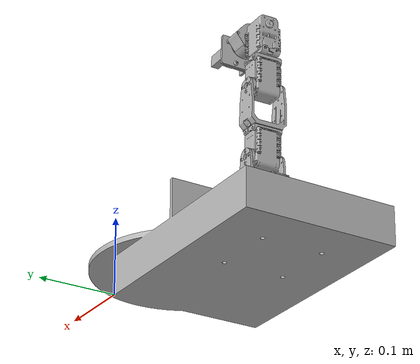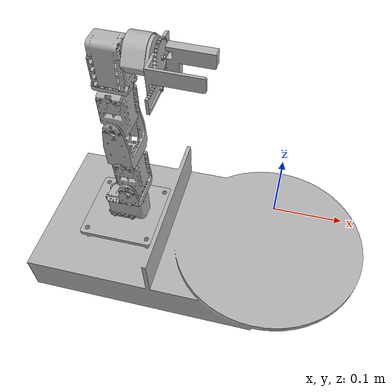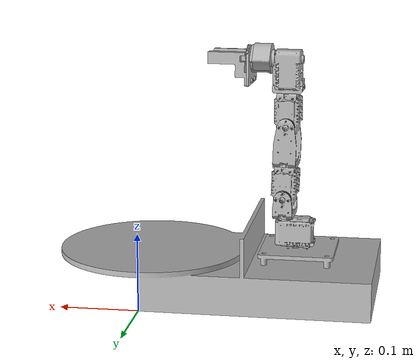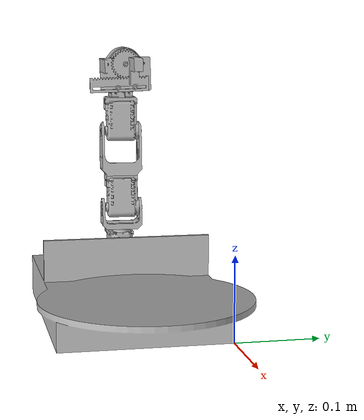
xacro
<?xml version="1.0" ?>
<robot name="gripper_v2_step_urdf_run" xmlns:xacro="http://www.ros.org/wiki/xacro">

<xacro:include filename="$(find gripper_v2_step_urdf_run_description)/urdf/materials.xacro" />
<xacro:include filename="$(find gripper_v2_step_urdf_run_description)/urdf/gripper_v2_step_urdf_run.trans" />
<xacro:include filename="$(find gripper_v2_step_urdf_run_description)/urdf/gripper_v2_step_urdf_run.gazebo" />
<link name="base_link">
  <inertial>
    <origin rpy="0 0 0" xyz="-0.13061584390590184 -0.10000000000000005 0.028534224138586563"/>
    <mass value="3.2610176727053894"/>
    <inertia ixx="0.01192" ixy="-0.0" ixz="-0.00118" iyy="0.028394" iyz="0.0" izz="0.038402"/>
  </inertial>
  <visual>
    <origin rpy="0 0 0" xyz="0 0 0"/>
    <geometry>
      <mesh filename="package://gripper_v2_step_urdf_run_description/meshes/base_link.stl" scale="0.001 0.001 0.001"/>
    </geometry>
    <material name="silver"/>
  </visual>
  <collision>
    <origin rpy="0 0 0" xyz="0 0 0"/>
    <geometry>
      <mesh filename="package://gripper_v2_step_urdf_run_description/meshes/base_link.stl" scale="0.001 0.001 0.001"/>
    </geometry>
  </collision>
</link>

<link name="base_plate_mount_1">
  <inertial>
    <origin rpy="0 0 0" xyz="-0.04057521675747397 0.04000000000209905 0.012372995127134884"/>
    <mass value="0.04509991369969903"/>
    <inertia ixx="3.6e-05" ixy="-0.0" ixz="0.0" iyy="3.5e-05" iyz="-0.0" izz="7.1e-05"/>
  </inertial>
  <visual>
    <origin rpy="0 0 0" xyz="0.15 0.14 -0.05"/>
    <geometry>
      <mesh filename="package://gripper_v2_step_urdf_run_description/meshes/base_plate_mount_1.stl" scale="0.001 0.001 0.001"/>
    </geometry>
    <material name="silver"/>
  </visual>
  <collision>
    <origin rpy="0 0 0" xyz="0.15 0.14 -0.05"/>
    <geometry>
      <mesh filename="package://gripper_v2_step_urdf_run_description/meshes/base_plate_mount_1.stl" scale="0.001 0.001 0.001"/>
    </geometry>
  </collision>
</link>

<link name="servo_1_1">
  <inertial>
    <origin rpy="0 0 0" xyz="0.10073769398669274 -0.20196890945483864 -0.06114143110936347"/>
    <mass value="0.042440875020205084"/>
    <inertia ixx="7e-06" ixy="0.0" ixz="-0.0" iyy="1.2e-05" iyz="-0.0" izz="1e-05"/>
  </inertial>
  <visual>
    <origin rpy="0 0 0" xyz="0.285 -0.102 -0.146"/>
    <geometry>
      <mesh filename="package://gripper_v2_step_urdf_run_description/meshes/servo_1_1.stl" scale="0.001 0.001 0.001"/>
    </geometry>
    <material name="silver"/>
  </visual>
  <collision>
    <origin rpy="0 0 0" xyz="0.285 -0.102 -0.146"/>
    <geometry>
      <mesh filename="package://gripper_v2_step_urdf_run_description/meshes/servo_1_1.stl" scale="0.001 0.001 0.001"/>
    </geometry>
  </collision>
</link>

<link name="FP04_F2_1">
  <inertial>
    <origin rpy="0 0 0" xyz="-2.2835056749104243e-06 7.878932968552466e-08 0.010919886131909098"/>
    <mass value="0.00729150768884446"/>
    <inertia ixx="3e-06" ixy="-0.0" ixz="-0.0" iyy="1e-06" iyz="0.0" izz="3e-06"/>
  </inertial>
  <visual>
    <origin rpy="0 0 0" xyz="0.1715 0.1 -0.1048"/>
    <geometry>
      <mesh filename="package://gripper_v2_step_urdf_run_description/meshes/FP04_F2_1.stl" scale="0.001 0.001 0.001"/>
    </geometry>
    <material name="silver"/>
  </visual>
  <collision>
    <origin rpy="0 0 0" xyz="0.1715 0.1 -0.1048"/>
    <geometry>
      <mesh filename="package://gripper_v2_step_urdf_run_description/meshes/FP04_F2_1.stl" scale="0.001 0.001 0.001"/>
    </geometry>
  </collision>
</link>

<link name="servo_2_1">
  <inertial>
    <origin rpy="0 0 0" xyz="-0.0011528041974186443 -0.019914005862906953 0.012735953092457036"/>
    <mass value="0.042440875020205084"/>
    <inertia ixx="1.2e-05" ixy="-0.0" ixz="0.0" iyy="1e-05" iyz="0.0" izz="7e-06"/>
  </inertial>
  <visual>
    <origin rpy="0 0 0" xyz="0.170776 0.079012 -0.1308"/>
    <geometry>
      <mesh filename="package://gripper_v2_step_urdf_run_description/meshes/servo_2_1.stl" scale="0.001 0.001 0.001"/>
    </geometry>
    <material name="silver"/>
  </visual>
  <collision>
    <origin rpy="0 0 0" xyz="0.170776 0.079012 -0.1308"/>
    <geometry>
      <mesh filename="package://gripper_v2_step_urdf_run_description/meshes/servo_2_1.stl" scale="0.001 0.001 0.001"/>
    </geometry>
  </collision>
</link>

<link name="FP04_F3_1">
  <inertial>
    <origin rpy="0 0 0" xyz="-0.007562269406785671 0.016270554747837562 0.0028274374124443724"/>
    <mass value="0.0032063675233573626"/>
    <inertia ixx="0.0" ixy="-0.0" ixz="-0.0" iyy="0.0" iyz="0.0" izz="1e-06"/>
  </inertial>
  <visual>
    <origin rpy="0 0 0" xyz="0.165287 0.116224 -0.167034"/>
    <geometry>
      <mesh filename="package://gripper_v2_step_urdf_run_description/meshes/FP04_F3_1.stl" scale="0.001 0.001 0.001"/>
    </geometry>
    <material name="silver"/>
  </visual>
  <collision>
    <origin rpy="0 0 0" xyz="0.165287 0.116224 -0.167034"/>
    <geometry>
      <mesh filename="package://gripper_v2_step_urdf_run_description/meshes/FP04_F3_1.stl" scale="0.001 0.001 0.001"/>
    </geometry>
  </collision>
</link>

<link name="FP04_F4_1">
  <inertial>
    <origin rpy="0 0 0" xyz="-0.00010300603218835191 3.307773521935009e-06 0.02030828408532634"/>
    <mass value="0.013155457106839217"/>
    <inertia ixx="9e-06" ixy="-0.0" ixz="0.0" iyy="5e-06" iyz="-0.0" izz="6e-06"/>
  </inertial>
  <visual>
    <origin rpy="0 0 0" xyz="0.172913 0.099951 -0.172258"/>
    <geometry>
      <mesh filename="package://gripper_v2_step_urdf_run_description/meshes/FP04_F4_1.stl" scale="0.001 0.001 0.001"/>
    </geometry>
    <material name="silver"/>
  </visual>
  <collision>
    <origin rpy="0 0 0" xyz="0.172913 0.099951 -0.172258"/>
    <geometry>
      <mesh filename="package://gripper_v2_step_urdf_run_description/meshes/FP04_F4_1.stl" scale="0.001 0.001 0.001"/>
    </geometry>
  </collision>
</link>

<link name="servo_3_1">
  <inertial>
    <origin rpy="0 0 0" xyz="-0.0007003515163712948 -0.019928722948942976 0.01274422215969645"/>
    <mass value="0.042440875020205084"/>
    <inertia ixx="1.2e-05" ixy="-0.0" ixz="0.0" iyy="1e-05" iyz="0.0" izz="7e-06"/>
  </inertial>
  <visual>
    <origin rpy="0 0 0" xyz="0.173961 0.078903 -0.224228"/>
    <geometry>
      <mesh filename="package://gripper_v2_step_urdf_run_description/meshes/servo_3_1.stl" scale="0.001 0.001 0.001"/>
    </geometry>
    <material name="silver"/>
  </visual>
  <collision>
    <origin rpy="0 0 0" xyz="0.173961 0.078903 -0.224228"/>
    <geometry>
      <mesh filename="package://gripper_v2_step_urdf_run_description/meshes/servo_3_1.stl" scale="0.001 0.001 0.001"/>
    </geometry>
  </collision>
</link>

<link name="FP04_F3_2_1">
  <inertial>
    <origin rpy="0 0 0" xyz="-0.007456003488916174 0.016266548669665024 0.0031145097962783086"/>
    <mass value="0.0032063675233573626"/>
    <inertia ixx="0.0" ixy="-0.0" ixz="0.0" iyy="0.0" iyz="-0.0" izz="1e-06"/>
  </inertial>
  <visual>
    <origin rpy="0 0 0" xyz="0.16719 0.116158 -0.260198"/>
    <geometry>
      <mesh filename="package://gripper_v2_step_urdf_run_description/meshes/FP04_F3_2_1.stl" scale="0.001 0.001 0.001"/>
    </geometry>
    <material name="silver"/>
  </visual>
  <collision>
    <origin rpy="0 0 0" xyz="0.16719 0.116158 -0.260198"/>
    <geometry>
      <mesh filename="package://gripper_v2_step_urdf_run_description/meshes/FP04_F3_2_1.stl" scale="0.001 0.001 0.001"/>
    </geometry>
  </collision>
</link>

<link name="FP04_F3_3_1">
  <inertial>
    <origin rpy="0 0 0" xyz="2.868505404624022e-06 -1.78027814595888e-05 0.0023971967535960093"/>
    <mass value="0.0032063675233573626"/>
    <inertia ixx="0.0" ixy="0.0" ixz="0.0" iyy="0.0" iyz="0.0" izz="1e-06"/>
  </inertial>
  <visual>
    <origin rpy="0 0 0" xyz="0.174625 0.099892 -0.26571"/>
    <geometry>
      <mesh filename="package://gripper_v2_step_urdf_run_description/meshes/FP04_F3_3_1.stl" scale="0.001 0.001 0.001"/>
    </geometry>
    <material name="silver"/>
  </visual>
  <collision>
    <origin rpy="0 0 0" xyz="0.174625 0.099892 -0.26571"/>
    <geometry>
      <mesh filename="package://gripper_v2_step_urdf_run_description/meshes/FP04_F3_3_1.stl" scale="0.001 0.001 0.001"/>
    </geometry>
  </collision>
</link>

<link name="servo_4_1">
  <inertial>
    <origin rpy="0 0 0" xyz="-0.015175375606596264 -0.007512191648896535 0.023258964583552755"/>
    <mass value="0.042440875020205084"/>
    <inertia ixx="1e-05" ixy="0.0" ixz="-0.0" iyy="1.2e-05" iyz="-0.0" izz="7e-06"/>
  </inertial>
  <visual>
    <origin rpy="0 0 0" xyz="0.158351 0.092449 -0.271187"/>
    <geometry>
      <mesh filename="package://gripper_v2_step_urdf_run_description/meshes/servo_4_1.stl" scale="0.001 0.001 0.001"/>
    </geometry>
    <material name="silver"/>
  </visual>
  <collision>
    <origin rpy="0 0 0" xyz="0.158351 0.092449 -0.271187"/>
    <geometry>
      <mesh filename="package://gripper_v2_step_urdf_run_description/meshes/servo_4_1.stl" scale="0.001 0.001 0.001"/>
    </geometry>
  </collision>
</link>

<link name="small_stepper_mount_1">
  <inertial>
    <origin rpy="0 0 0" xyz="0.007315854634428631 -0.00030664605740757245 0.0017991844732478945"/>
    <mass value="0.005589795057561586"/>
    <inertia ixx="2e-06" ixy="-0.0" ixz="-0.0" iyy="1e-06" iyz="-0.0" izz="1e-06"/>
  </inertial>
  <visual>
    <origin rpy="0 0 0" xyz="0.153577 0.100618 -0.307161"/>
    <geometry>
      <mesh filename="package://gripper_v2_step_urdf_run_description/meshes/small_stepper_mount_1.stl" scale="0.001 0.001 0.001"/>
    </geometry>
    <material name="silver"/>
  </visual>
  <collision>
    <origin rpy="0 0 0" xyz="0.153577 0.100618 -0.307161"/>
    <geometry>
      <mesh filename="package://gripper_v2_step_urdf_run_description/meshes/small_stepper_mount_1.stl" scale="0.001 0.001 0.001"/>
    </geometry>
  </collision>
</link>

<link name="small_stepper_1">
  <inertial>
    <origin rpy="0 0 0" xyz="-0.0073544407223115615 0.02125572873037436 0.0006618124750603638"/>
    <mass value="0.021972091643421288"/>
    <inertia ixx="3e-06" ixy="-0.0" ixz="-0.0" iyy="3e-06" iyz="-0.0" izz="3e-06"/>
  </inertial>
  <visual>
    <origin rpy="0 0 0" xyz="0.132315 0.122352 -0.306509"/>
    <geometry>
      <mesh filename="package://gripper_v2_step_urdf_run_description/meshes/small_stepper_1.stl" scale="0.001 0.001 0.001"/>
    </geometry>
    <material name="silver"/>
  </visual>
  <collision>
    <origin rpy="0 0 0" xyz="0.132315 0.122352 -0.306509"/>
    <geometry>
      <mesh filename="package://gripper_v2_step_urdf_run_description/meshes/small_stepper_1.stl" scale="0.001 0.001 0.001"/>
    </geometry>
  </collision>
</link>

<link name="base_of_gripper_1">
  <inertial>
    <origin rpy="0 0 0" xyz="0.007452177106153007 -0.0282730339284009 -0.010104236330495953"/>
    <mass value="0.009238565523305743"/>
    <inertia ixx="5e-06" ixy="1e-06" ixz="-1e-06" iyy="3e-06" iyz="1e-06" izz="5e-06"/>
  </inertial>
  <visual>
    <origin rpy="0 0 0" xyz="0.127867 0.080499 -0.307752"/>
    <geometry>
      <mesh filename="package://gripper_v2_step_urdf_run_description/meshes/base_of_gripper_1.stl" scale="0.001 0.001 0.001"/>
    </geometry>
    <material name="silver"/>
  </visual>
  <collision>
    <origin rpy="0 0 0" xyz="0.127867 0.080499 -0.307752"/>
    <geometry>
      <mesh filename="package://gripper_v2_step_urdf_run_description/meshes/base_of_gripper_1.stl" scale="0.001 0.001 0.001"/>
    </geometry>
  </collision>
</link>

<link name="pinion_of_gripper_1">
  <inertial>
    <origin rpy="0 0 0" xyz="0.0014992964783867302 -5.1871881376563955e-05 -2.1163869917684153e-06"/>
    <mass value="0.0022895870474261503"/>
    <inertia ixx="0.0" ixy="-0.0" ixz="-0.0" iyy="0.0" iyz="0.0" izz="0.0"/>
  </inertial>
  <visual>
    <origin rpy="0 0 0" xyz="0.125594 0.101581 -0.307124"/>
    <geometry>
      <mesh filename="package://gripper_v2_step_urdf_run_description/meshes/pinion_of_gripper_1.stl" scale="0.001 0.001 0.001"/>
    </geometry>
    <material name="silver"/>
  </visual>
  <collision>
    <origin rpy="0 0 0" xyz="0.125594 0.101581 -0.307124"/>
    <geometry>
      <mesh filename="package://gripper_v2_step_urdf_run_description/meshes/pinion_of_gripper_1.stl" scale="0.001 0.001 0.001"/>
    </geometry>
  </collision>
</link>

<link name="nut_1_1">
  <inertial>
    <origin rpy="0 0 0" xyz="0.0008998664792069233 -3.063540858722069e-05 -1.6020389344006958e-06"/>
    <mass value="0.00029368578979184197"/>
    <inertia ixx="0.0" ixy="-0.0" ixz="-0.0" iyy="0.0" iyz="0.0" izz="0.0"/>
  </inertial>
  <visual>
    <origin rpy="0 0 0" xyz="0.122596 0.101685 -0.30712"/>
    <geometry>
      <mesh filename="package://gripper_v2_step_urdf_run_description/meshes/nut_1_1.stl" scale="0.001 0.001 0.001"/>
    </geometry>
    <material name="silver"/>
  </visual>
  <collision>
    <origin rpy="0 0 0" xyz="0.122596 0.101685 -0.30712"/>
    <geometry>
      <mesh filename="package://gripper_v2_step_urdf_run_description/meshes/nut_1_1.stl" scale="0.001 0.001 0.001"/>
    </geometry>
  </collision>
</link>

<link name="screw_1_1">
  <inertial>
    <origin rpy="0 0 0" xyz="0.0017881634522871892 -6.12780414034203e-05 -2.2539808638422087e-06"/>
    <mass value="0.0008008613031890769"/>
    <inertia ixx="0.0" ixy="0.0" ixz="0.0" iyy="0.0" iyz="-0.0" izz="0.0"/>
  </inertial>
  <visual>
    <origin rpy="0 0 0" xyz="0.128261 0.090753 -0.280186"/>
    <geometry>
      <mesh filename="package://gripper_v2_step_urdf_run_description/meshes/screw_1_1.stl" scale="0.001 0.001 0.001"/>
    </geometry>
    <material name="silver"/>
  </visual>
  <collision>
    <origin rpy="0 0 0" xyz="0.128261 0.090753 -0.280186"/>
    <geometry>
      <mesh filename="package://gripper_v2_step_urdf_run_description/meshes/screw_1_1.stl" scale="0.001 0.001 0.001"/>
    </geometry>
  </collision>
</link>

<link name="screw_2_1">
  <inertial>
    <origin rpy="0 0 0" xyz="0.001788529631487984 -6.160638391075612e-05 -2.2017532239626547e-06"/>
    <mass value="0.0008008613031890769"/>
    <inertia ixx="0.0" ixy="0.0" ixz="0.0" iyy="0.0" iyz="-0.0" izz="0.0"/>
  </inertial>
  <visual>
    <origin rpy="0 0 0" xyz="0.128949 0.110657 -0.279594"/>
    <geometry>
      <mesh filename="package://gripper_v2_step_urdf_run_description/meshes/screw_2_1.stl" scale="0.001 0.001 0.001"/>
    </geometry>
    <material name="silver"/>
  </visual>
  <collision>
    <origin rpy="0 0 0" xyz="0.128949 0.110657 -0.279594"/>
    <geometry>
      <mesh filename="package://gripper_v2_step_urdf_run_description/meshes/screw_2_1.stl" scale="0.001 0.001 0.001"/>
    </geometry>
  </collision>
</link>

<link name="rack_of_gripper_1">
  <inertial>
    <origin rpy="0 0 0" xyz="-0.24822425533115322 0.19226364208475433 0.14591401307361299"/>
    <mass value="0.011351548894705531"/>
    <inertia ixx="3e-06" ixy="-1e-06" ixz="-1e-06" iyy="4e-06" iyz="-1e-06" izz="5e-06"/>
  </inertial>
  <visual>
    <origin rpy="0 0 0" xyz="-0.143187 0.268228 -0.154014"/>
    <geometry>
      <mesh filename="package://gripper_v2_step_urdf_run_description/meshes/rack_of_gripper_1.stl" scale="0.001 0.001 0.001"/>
    </geometry>
    <material name="silver"/>
  </visual>
  <collision>
    <origin rpy="0 0 0" xyz="-0.143187 0.268228 -0.154014"/>
    <geometry>
      <mesh filename="package://gripper_v2_step_urdf_run_description/meshes/rack_of_gripper_1.stl" scale="0.001 0.001 0.001"/>
    </geometry>
  </collision>
</link>

<link name="nut_2_1">
  <inertial>
    <origin rpy="0 0 0" xyz="0.11738171575042146 -0.2815615074174431 -0.09949668425860769"/>
    <mass value="0.00029368578979184197"/>
    <inertia ixx="0.0" ixy="-0.0" ixz="-0.0" iyy="0.0" iyz="0.0" izz="0.0"/>
  </inertial>
  <visual>
    <origin rpy="0 0 0" xyz="0.238747 -0.190571 -0.379673"/>
    <geometry>
      <mesh filename="package://gripper_v2_step_urdf_run_description/meshes/nut_2_1.stl" scale="0.001 0.001 0.001"/>
    </geometry>
    <material name="silver"/>
  </visual>
  <collision>
    <origin rpy="0 0 0" xyz="0.238747 -0.190571 -0.379673"/>
    <geometry>
      <mesh filename="package://gripper_v2_step_urdf_run_description/meshes/nut_2_1.stl" scale="0.001 0.001 0.001"/>
    </geometry>
  </collision>
</link>

<link name="nut_3_1">
  <inertial>
    <origin rpy="0 0 0" xyz="0.13148608184562965 0.11472416191010025 -0.2763496345052618"/>
    <mass value="0.00029368578979184197"/>
    <inertia ixx="0.0" ixy="-0.0" ixz="-0.0" iyy="0.0" iyz="0.0" izz="0.0"/>
  </inertial>
  <visual>
    <origin rpy="0 0 0" xyz="0.253539 0.225619 -0.555934"/>
    <geometry>
      <mesh filename="package://gripper_v2_step_urdf_run_description/meshes/nut_3_1.stl" scale="0.001 0.001 0.001"/>
    </geometry>
    <material name="silver"/>
  </visual>
  <collision>
    <origin rpy="0 0 0" xyz="0.253539 0.225619 -0.555934"/>
    <geometry>
      <mesh filename="package://gripper_v2_step_urdf_run_description/meshes/nut_3_1.stl" scale="0.001 0.001 0.001"/>
    </geometry>
  </collision>
</link>

<joint name="Rigid1" type="fixed">
  <origin rpy="0 0 0" xyz="-0.15 -0.14 0.05"/>
  <parent link="base_link"/>
  <child link="base_plate_mount_1"/>
</joint>

<joint name="Rigid2" type="fixed">
  <origin rpy="0 0 0" xyz="-0.135 0.242 0.096"/>
  <parent link="base_plate_mount_1"/>
  <child link="servo_1_1"/>
</joint>

<joint name="Rev3" type="continuous">
  <origin rpy="0 0 0" xyz="0.1135 -0.202 -0.0412"/>
  <parent link="servo_1_1"/>
  <child link="FP04_F2_1"/>
  <axis xyz="0.0 0.0 1.0"/>
</joint>

<joint name="Rev4" type="continuous">
  <origin rpy="0 0 0" xyz="0.000724 0.020988 0.026"/>
  <parent link="FP04_F2_1"/>
  <child link="servo_2_1"/>
  <axis xyz="-0.034483 -0.999405 -0.0"/>
</joint>

<joint name="Rigid5" type="fixed">
  <origin rpy="0 0 0" xyz="0.005489 -0.037212 0.036234"/>
  <parent link="servo_2_1"/>
  <child link="FP04_F3_1"/>
</joint>

<joint name="Rigid6" type="fixed">
  <origin rpy="0 0 0" xyz="-0.007626 0.016273 0.005224"/>
  <parent link="FP04_F3_1"/>
  <child link="FP04_F4_1"/>
</joint>

<joint name="Rev7" type="continuous">
  <origin rpy="0 0 0" xyz="-0.001048 0.021048 0.05197"/>
  <parent link="FP04_F4_1"/>
  <child link="servo_3_1"/>
  <axis xyz="-0.034483 -0.999405 -0.0"/>
</joint>

<joint name="Rigid8" type="fixed">
  <origin rpy="0 0 0" xyz="0.006771 -0.037255 0.03597"/>
  <parent link="servo_3_1"/>
  <child link="FP04_F3_2_1"/>
</joint>

<joint name="Rigid9" type="fixed">
  <origin rpy="0 0 0" xyz="-0.007435 0.016266 0.005512"/>
  <parent link="FP04_F3_2_1"/>
  <child link="FP04_F3_3_1"/>
</joint>

<joint name="Rigid10" type="fixed">
  <origin rpy="0 0 0" xyz="0.016274 0.007443 0.005477"/>
  <parent link="FP04_F3_3_1"/>
  <child link="servo_4_1"/>
</joint>

<joint name="Rev11" type="continuous">
  <origin rpy="0 0 0" xyz="0.004774 -0.008169 0.035974"/>
  <parent link="servo_4_1"/>
  <child link="small_stepper_mount_1"/>
  <axis xyz="0.999404 -0.034483 -0.001454"/>
</joint>

<joint name="Rigid12" type="fixed">
  <origin rpy="0 0 0" xyz="0.021262 -0.021734 -0.000652"/>
  <parent link="small_stepper_mount_1"/>
  <child link="small_stepper_1"/>
</joint>

<joint name="Rigid13" type="fixed">
  <origin rpy="0 0 0" xyz="0.004448 0.041853 0.001243"/>
  <parent link="small_stepper_1"/>
  <child link="base_of_gripper_1"/>
</joint>

<joint name="Rev14" type="continuous">
  <origin rpy="0 0 0" xyz="0.002273 -0.021082 -0.000628"/>
  <parent link="base_of_gripper_1"/>
  <child link="pinion_of_gripper_1"/>
  <axis xyz="0.999404 -0.034483 -0.001454"/>
</joint>

<joint name="Rigid15" type="fixed">
  <origin rpy="0 0 0" xyz="0.002998 -0.000104 -4e-06"/>
  <parent link="pinion_of_gripper_1"/>
  <child link="nut_1_1"/>
</joint>

<joint name="Rigid16" type="fixed">
  <origin rpy="0 0 0" xyz="-0.000394 -0.010254 -0.027566"/>
  <parent link="base_of_gripper_1"/>
  <child link="screw_1_1"/>
</joint>

<joint name="Rigid17" type="fixed">
  <origin rpy="0 0 0" xyz="-0.001082 -0.030158 -0.028158"/>
  <parent link="base_of_gripper_1"/>
  <child link="screw_2_1"/>
</joint>

<joint name="Slider18" type="prismatic">
  <origin rpy="0 0 0" xyz="0.271054 -0.187729 -0.153738"/>
  <parent link="base_of_gripper_1"/>
  <child link="rack_of_gripper_1"/>
  <axis xyz="0.034511 0.998963 0.029709"/>
  <limit effort="100" lower="-0.041" upper="-0.002" velocity="100"/>
</joint>

<joint name="Rigid19" type="fixed">
  <origin rpy="0 0 0" xyz="-0.110486 0.281324 0.099487"/>
  <parent link="screw_1_1"/>
  <child link="nut_2_1"/>
</joint>

<joint name="Rigid20" type="fixed">
  <origin rpy="0 0 0" xyz="-0.12459 -0.114962 0.27634"/>
  <parent link="screw_2_1"/>
  <child link="nut_3_1"/>
</joint>

</robot>

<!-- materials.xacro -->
<robot name="gripper_v2_step_urdf_run" xmlns:xacro="http://www.ros.org/wiki/xacro" >

<material name="silver">
  <color rgba="0.700 0.700 0.700 1.000"/>
</material>

</robot>

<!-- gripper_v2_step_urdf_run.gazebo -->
<robot name="gripper_v2_step_urdf_run" xmlns:xacro="http://www.ros.org/wiki/xacro" >

<xacro:property name="body_color" value="Gazebo/Silver" />

<gazebo>
  <plugin filename="libgazebo_ros_control.so" name="control"/>
</gazebo>
<gazebo reference="base_link">
  <material>${body_color}</material>
  <mu1>0.2</mu1>
  <mu2>0.2</mu2>
  <selfCollide>true</selfCollide>
  <gravity>true</gravity>
</gazebo>

<gazebo reference="base_plate_mount_1">
  <material>${body_color}</material>
  <mu1>0.2</mu1>
  <mu2>0.2</mu2>
  <selfCollide>true</selfCollide>
</gazebo>

<gazebo reference="servo_1_1">
  <material>${body_color}</material>
  <mu1>0.2</mu1>
  <mu2>0.2</mu2>
  <selfCollide>true</selfCollide>
</gazebo>

<gazebo reference="FP04_F2_1">
  <material>${body_color}</material>
  <mu1>0.2</mu1>
  <mu2>0.2</mu2>
  <selfCollide>true</selfCollide>
</gazebo>

<gazebo reference="servo_2_1">
  <material>${body_color}</material>
  <mu1>0.2</mu1>
  <mu2>0.2</mu2>
  <selfCollide>true</selfCollide>
</gazebo>

<gazebo reference="FP04_F3_1">
  <material>${body_color}</material>
  <mu1>0.2</mu1>
  <mu2>0.2</mu2>
  <selfCollide>true</selfCollide>
</gazebo>

<gazebo reference="FP04_F4_1">
  <material>${body_color}</material>
  <mu1>0.2</mu1>
  <mu2>0.2</mu2>
  <selfCollide>true</selfCollide>
</gazebo>

<gazebo reference="servo_3_1">
  <material>${body_color}</material>
  <mu1>0.2</mu1>
  <mu2>0.2</mu2>
  <selfCollide>true</selfCollide>
</gazebo>

<gazebo reference="FP04_F3_2_1">
  <material>${body_color}</material>
  <mu1>0.2</mu1>
  <mu2>0.2</mu2>
  <selfCollide>true</selfCollide>
</gazebo>

<gazebo reference="FP04_F3_3_1">
  <material>${body_color}</material>
  <mu1>0.2</mu1>
  <mu2>0.2</mu2>
  <selfCollide>true</selfCollide>
</gazebo>

<gazebo reference="servo_4_1">
  <material>${body_color}</material>
  <mu1>0.2</mu1>
  <mu2>0.2</mu2>
  <selfCollide>true</selfCollide>
</gazebo>

<gazebo reference="small_stepper_mount_1">
  <material>${body_color}</material>
  <mu1>0.2</mu1>
  <mu2>0.2</mu2>
  <selfCollide>true</selfCollide>
</gazebo>

<gazebo reference="small_stepper_1">
  <material>${body_color}</material>
  <mu1>0.2</mu1>
  <mu2>0.2</mu2>
  <selfCollide>true</selfCollide>
</gazebo>

<gazebo reference="base_of_gripper_1">
  <material>${body_color}</material>
  <mu1>0.2</mu1>
  <mu2>0.2</mu2>
  <selfCollide>true</selfCollide>
</gazebo>

<gazebo reference="pinion_of_gripper_1">
  <material>${body_color}</material>
  <mu1>0.2</mu1>
  <mu2>0.2</mu2>
  <selfCollide>true</selfCollide>
</gazebo>

<gazebo reference="nut_1_1">
  <material>${body_color}</material>
  <mu1>0.2</mu1>
  <mu2>0.2</mu2>
  <selfCollide>true</selfCollide>
</gazebo>

<gazebo reference="screw_1_1">
  <material>${body_color}</material>
  <mu1>0.2</mu1>
  <mu2>0.2</mu2>
  <selfCollide>true</selfCollide>
</gazebo>

<gazebo reference="screw_2_1">
  <material>${body_color}</material>
  <mu1>0.2</mu1>
  <mu2>0.2</mu2>
  <selfCollide>true</selfCollide>
</gazebo>

<gazebo reference="rack_of_gripper_1">
  <material>${body_color}</material>
  <mu1>0.2</mu1>
  <mu2>0.2</mu2>
  <selfCollide>true</selfCollide>
</gazebo>

<gazebo reference="nut_2_1">
  <material>${body_color}</material>
  <mu1>0.2</mu1>
  <mu2>0.2</mu2>
  <selfCollide>true</selfCollide>
</gazebo>

<gazebo reference="nut_3_1">
  <material>${body_color}</material>
  <mu1>0.2</mu1>
  <mu2>0.2</mu2>
  <selfCollide>true</selfCollide>
</gazebo>

</robot>
